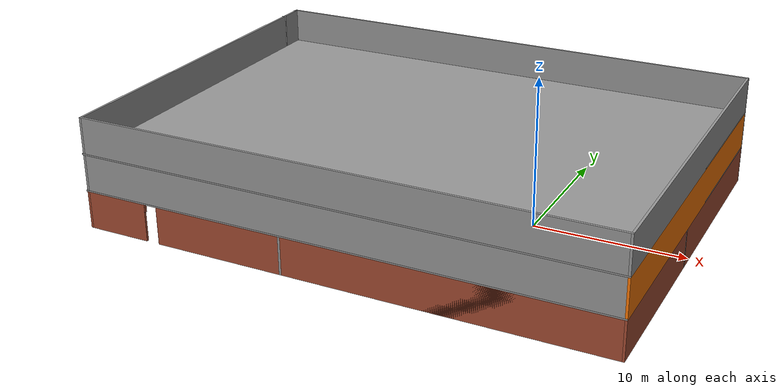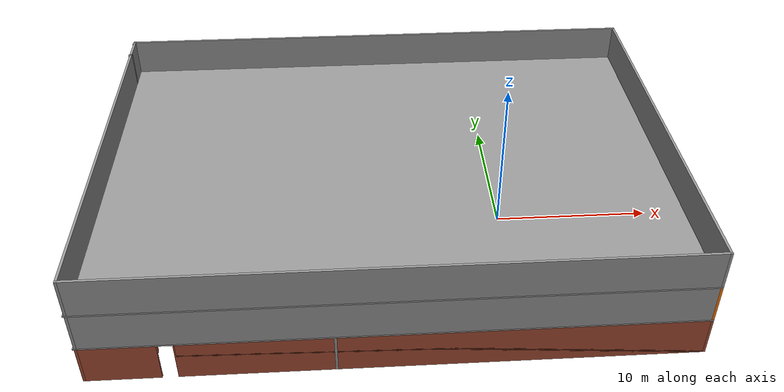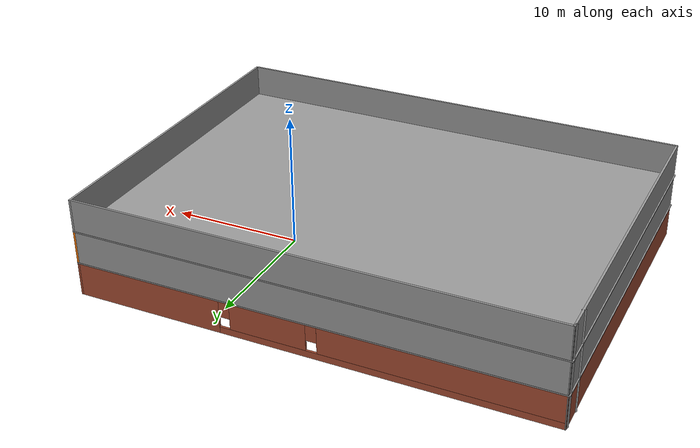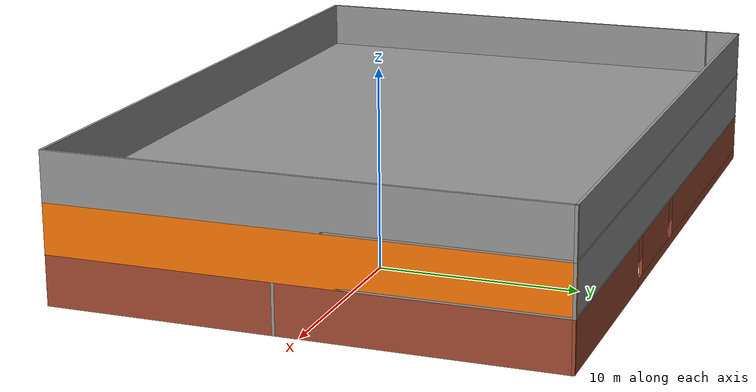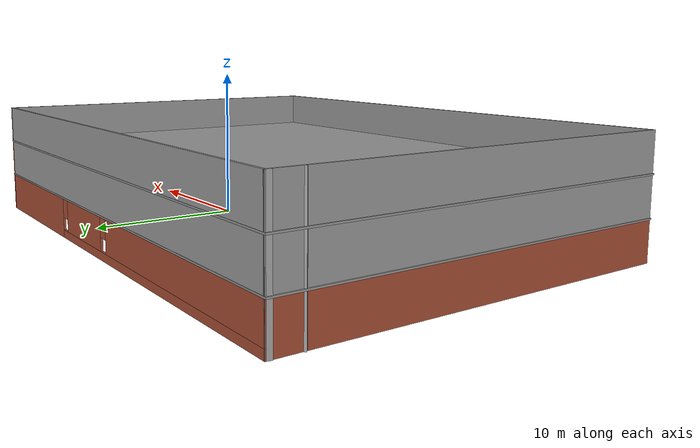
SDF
<?xml version='1.0'?>
<sdf version='1.6'>
  <model name='Building'>
    <pose frame=''>-7.54521 0.007829 0 0 -0 0</pose>
    <link name='Door_0'>
      <collision name='Door_0_Collision'>
        <geometry>
          <box>
            <size>0 0.17 0</size>
          </box>
        </geometry>
        <pose frame=''>0 0 0 0 -0 0</pose>
      </collision>
      <visual name='Door_0_Visual'>
        <pose frame=''>0 0 0 0 -0 0</pose>
        <geometry>
          <box>
            <size>0 0.17 0</size>
          </box>
        </geometry>
        <material>
          <script>
            <uri>file://media/materials/scripts/gazebo.material</uri>
            <name>Gazebo/Grey</name>
          </script>
        </material>
      </visual>
      <pose frame=''>-15.6038 -12.844 0 0 -0 0</pose>
    </link>
    <link name='Floor_0'>
      <collision name='Floor_0_Collision'>
        <geometry>
          <box>
            <size>35.2404 25.1657 0.1</size>
          </box>
        </geometry>
        <pose frame=''>0 0 0.05 0 -0 0</pose>
      </collision>
      <visual name='Floor_0_Visual'>
        <pose frame=''>0 0 0.05 0 -0 0</pose>
        <geometry>
          <box>
            <size>35.2404 25.1657 0.1</size>
          </box>
        </geometry>
        <material>
          <script>
            <uri>file://media/materials/scripts/gazebo.material</uri>
            <name>Gazebo/Grey</name>
          </script>
          <ambient>1 1 1 1</ambient>
        </material>
        <meta>
          <layer>1</layer>
        </meta>
      </visual>
      <pose frame=''>-8e-06 1e-06 2.5 0 -0 0</pose>
    </link>
    <link name='Floor_1'>
      <collision name='Floor_1_Collision'>
        <geometry>
          <box>
            <size>35.2404 25.1657 0.1</size>
          </box>
        </geometry>
        <pose frame=''>0 0 0.05 0 -0 0</pose>
      </collision>
      <visual name='Floor_1_Visual'>
        <pose frame=''>0 0 0.05 0 -0 0</pose>
        <geometry>
          <box>
            <size>35.2404 25.1657 0.1</size>
          </box>
        </geometry>
        <material>
          <script>
            <uri>file://media/materials/scripts/gazebo.material</uri>
            <name>Gazebo/Grey</name>
          </script>
          <ambient>1 1 1 1</ambient>
        </material>
        <meta>
          <layer>2</layer>
        </meta>
      </visual>
      <pose frame=''>-8e-06 1e-06 5 0 -0 0</pose>
    </link>
    <link name='Wall_0'>
      <collision name='Wall_0_Collision'>
        <geometry>
          <box>
            <size>25.15 0.15 2.5</size>
          </box>
        </geometry>
        <pose frame=''>0 0 1.25 0 -0 0</pose>
      </collision>
      <visual name='Wall_0_Visual'>
        <pose frame=''>0 0 1.25 0 -0 0</pose>
        <geometry>
          <box>
            <size>25.15 0.15 2.5</size>
          </box>
        </geometry>
        <material>
          <script>
            <uri>file://media/materials/scripts/gazebo.material</uri>
            <name>Gazebo/Bricks</name>
          </script>
          <ambient>0.996078 0.47451 0.0196078 1</ambient>
        </material>
        <meta>
          <layer>0</layer>
        </meta>
      </visual>
      <pose frame=''>-17.4548 -0.007829 0 0 0 -1.5708</pose>
    </link>
    <link name='Wall_1'>
      <pose frame=''>0.045213 -12.5078 0 0 -0 0</pose>
      <visual name='Wall_1_Visual_0'>
        <pose frame=''>-15.3964 0 1.25 0 -0 0</pose>
        <geometry>
          <box>
            <size>4.35711 0.15 2.5</size>
          </box>
        </geometry>
        <material>
          <script>
            <uri>file://media/materials/scripts/gazebo.material</uri>
            <name>Gazebo/Bricks</name>
          </script>
          <ambient>0.996078 0.47451 0.0196078 1</ambient>
        </material>
        <meta>
          <layer>0</layer>
        </meta>
      </visual>
      <collision name='Wall_1_Collision_0'>
        <geometry>
          <box>
            <size>4.35711 0.15 2.5</size>
          </box>
        </geometry>
        <pose frame=''>-15.3964 0 1.25 0 -0 0</pose>
      </collision>
      <visual name='Wall_1_Visual_1'>
        <pose frame=''>2.62855 0 1.25 0 -0 0</pose>
        <geometry>
          <box>
            <size>29.8929 0.15 2.5</size>
          </box>
        </geometry>
        <material>
          <script>
            <uri>file://media/materials/scripts/gazebo.material</uri>
            <name>Gazebo/Bricks</name>
          </script>
          <ambient>0.996078 0.47451 0.0196078 1</ambient>
        </material>
        <meta>
          <layer>0</layer>
        </meta>
      </visual>
      <collision name='Wall_1_Collision_1'>
        <geometry>
          <box>
            <size>29.8929 0.15 2.5</size>
          </box>
        </geometry>
        <pose frame=''>2.62855 0 1.25 0 -0 0</pose>
      </collision>
      <visual name='Wall_1_Visual_2'>
        <pose frame=''>2.66784 0 1.25 0 -0 0</pose>
        <geometry>
          <box>
            <size>29.8143 0.15 2.5</size>
          </box>
        </geometry>
        <material>
          <script>
            <uri>file://media/materials/scripts/gazebo.material</uri>
            <name>Gazebo/Bricks</name>
          </script>
          <ambient>0.996078 0.47451 0.0196078 1</ambient>
        </material>
        <meta>
          <layer>0</layer>
        </meta>
      </visual>
      <collision name='Wall_1_Collision_2'>
        <geometry>
          <box>
            <size>29.8143 0.15 2.5</size>
          </box>
        </geometry>
        <pose frame=''>2.66784 0 1.25 0 -0 0</pose>
      </collision>
      <visual name='Wall_1_Visual_3'>
        <pose frame=''>-13.1786 0 2.25 0 -0 0</pose>
        <geometry>
          <box>
            <size>0.078566 0.15 0.5</size>
          </box>
        </geometry>
        <material>
          <script>
            <uri>file://media/materials/scripts/gazebo.material</uri>
            <name>Gazebo/Bricks</name>
          </script>
          <ambient>0.996078 0.47451 0.0196078 1</ambient>
        </material>
        <meta>
          <layer>0</layer>
        </meta>
      </visual>
      <collision name='Wall_1_Collision_3'>
        <geometry>
          <box>
            <size>0.078566 0.15 0.5</size>
          </box>
        </geometry>
        <pose frame=''>-13.1786 0 2.25 0 -0 0</pose>
      </collision>
    </link>
    <link name='Wall_10'>
      <collision name='Wall_10_Collision'>
        <geometry>
          <box>
            <size>35.15 0.15 2.5</size>
          </box>
        </geometry>
        <pose frame=''>0 0 1.25 0 -0 0</pose>
      </collision>
      <visual name='Wall_10_Visual'>
        <pose frame=''>0 0 1.25 0 -0 0</pose>
        <geometry>
          <box>
            <size>35.15 0.15 2.5</size>
          </box>
        </geometry>
        <material>
          <script>
            <uri>file://media/materials/scripts/gazebo.material</uri>
            <name>Gazebo/Grey</name>
          </script>
          <ambient>1 1 1 1</ambient>
        </material>
        <meta>
          <layer>1</layer>
        </meta>
      </visual>
      <pose frame=''>0.045213 -12.5078 2.5 0 -0 0</pose>
    </link>
    <link name='Wall_11'>
      <collision name='Wall_11_Collision'>
        <geometry>
          <box>
            <size>25.15 0.15 2.5</size>
          </box>
        </geometry>
        <pose frame=''>0 0 1.25 0 -0 0</pose>
      </collision>
      <visual name='Wall_11_Visual'>
        <pose frame=''>0 0 1.25 0 -0 0</pose>
        <geometry>
          <box>
            <size>25.15 0.15 2.5</size>
          </box>
        </geometry>
        <material>
          <script>
            <uri>file://media/materials/scripts/gazebo.material</uri>
            <name>Gazebo/Grey</name>
          </script>
          <ambient>0.996078 0.47451 0.0196078 1</ambient>
        </material>
        <meta>
          <layer>1</layer>
        </meta>
      </visual>
      <pose frame=''>17.5452 -0.007829 2.5 0 -0 1.5708</pose>
    </link>
    <link name='Wall_12'>
      <collision name='Wall_12_Collision'>
        <geometry>
          <box>
            <size>35.15 0.15 2.5</size>
          </box>
        </geometry>
        <pose frame=''>0 0 1.25 0 -0 0</pose>
      </collision>
      <visual name='Wall_12_Visual'>
        <pose frame=''>0 0 1.25 0 -0 0</pose>
        <geometry>
          <box>
            <size>35.15 0.15 2.5</size>
          </box>
        </geometry>
        <material>
          <script>
            <uri>file://media/materials/scripts/gazebo.material</uri>
            <name>Gazebo/Grey</name>
          </script>
          <ambient>1 1 1 1</ambient>
        </material>
        <meta>
          <layer>1</layer>
        </meta>
      </visual>
      <pose frame=''>0.045213 12.4922 2.5 0 -0 3.14159</pose>
    </link>
    <link name='Wall_13'>
      <collision name='Wall_13_Collision'>
        <geometry>
          <box>
            <size>0.362096 0.15 2.5</size>
          </box>
        </geometry>
        <pose frame=''>0 0 1.25 0 -0 0</pose>
      </collision>
      <visual name='Wall_13_Visual'>
        <pose frame=''>0 0 1.25 0 -0 0</pose>
        <geometry>
          <box>
            <size>0.362096 0.15 2.5</size>
          </box>
        </geometry>
        <material>
          <script>
            <uri>file://media/materials/scripts/gazebo.material</uri>
            <name>Gazebo/Grey</name>
          </script>
          <ambient>1 1 1 1</ambient>
        </material>
        <meta>
          <layer>1</layer>
        </meta>
      </visual>
      <pose frame=''>-17.48 12.3892 2.5 0 0 -1.81046</pose>
    </link>
    <link name='Wall_14'>
      <collision name='Wall_14_Collision'>
        <geometry>
          <box>
            <size>0.25 0.15 2.5</size>
          </box>
        </geometry>
        <pose frame=''>0 0 1.25 0 -0 0</pose>
      </collision>
      <visual name='Wall_14_Visual'>
        <pose frame=''>0 0 1.25 0 -0 0</pose>
        <geometry>
          <box>
            <size>0.25 0.15 2.5</size>
          </box>
        </geometry>
        <material>
          <script>
            <uri>file://media/materials/scripts/gazebo.material</uri>
            <name>Gazebo/Grey</name>
          </script>
          <ambient>1 1 1 1</ambient>
        </material>
        <meta>
          <layer>1</layer>
        </meta>
      </visual>
      <pose frame=''>-17.4788 10.6828 2.5 0 0 -2.35619</pose>
    </link>
    <link name='Wall_15'>
      <collision name='Wall_15_Collision'>
        <geometry>
          <box>
            <size>25.15 0.15 2.5</size>
          </box>
        </geometry>
        <pose frame=''>0 0 1.25 0 -0 0</pose>
      </collision>
      <visual name='Wall_15_Visual'>
        <pose frame=''>0 0 1.25 0 -0 0</pose>
        <geometry>
          <box>
            <size>25.15 0.15 2.5</size>
          </box>
        </geometry>
        <material>
          <script>
            <uri>file://media/materials/scripts/gazebo.material</uri>
            <name>Gazebo/Grey</name>
          </script>
          <ambient>1 1 1 1</ambient>
        </material>
        <meta>
          <layer>2</layer>
        </meta>
      </visual>
      <pose frame=''>-17.4548 -0.007829 5 0 0 -1.5708</pose>
    </link>
    <link name='Wall_16'>
      <collision name='Wall_16_Collision'>
        <geometry>
          <box>
            <size>35.15 0.15 2.5</size>
          </box>
        </geometry>
        <pose frame=''>0 0 1.25 0 -0 0</pose>
      </collision>
      <visual name='Wall_16_Visual'>
        <pose frame=''>0 0 1.25 0 -0 0</pose>
        <geometry>
          <box>
            <size>35.15 0.15 2.5</size>
          </box>
        </geometry>
        <material>
          <script>
            <uri>file://media/materials/scripts/gazebo.material</uri>
            <name>Gazebo/Grey</name>
          </script>
          <ambient>1 1 1 1</ambient>
        </material>
        <meta>
          <layer>2</layer>
        </meta>
      </visual>
      <pose frame=''>0.045213 -12.5078 5 0 -0 0</pose>
    </link>
    <link name='Wall_17'>
      <collision name='Wall_17_Collision'>
        <geometry>
          <box>
            <size>25.15 0.15 2.5</size>
          </box>
        </geometry>
        <pose frame=''>0 0 1.25 0 -0 0</pose>
      </collision>
      <visual name='Wall_17_Visual'>
        <pose frame=''>0 0 1.25 0 -0 0</pose>
        <geometry>
          <box>
            <size>25.15 0.15 2.5</size>
          </box>
        </geometry>
        <material>
          <script>
            <uri>file://media/materials/scripts/gazebo.material</uri>
            <name>Gazebo/Grey</name>
          </script>
          <ambient>1 1 1 1</ambient>
        </material>
        <meta>
          <layer>2</layer>
        </meta>
      </visual>
      <pose frame=''>17.5452 -0.007829 5 0 -0 1.5708</pose>
    </link>
    <link name='Wall_18'>
      <collision name='Wall_18_Collision'>
        <geometry>
          <box>
            <size>35.15 0.15 2.5</size>
          </box>
        </geometry>
        <pose frame=''>0 0 1.25 0 -0 0</pose>
      </collision>
      <visual name='Wall_18_Visual'>
        <pose frame=''>0 0 1.25 0 -0 0</pose>
        <geometry>
          <box>
            <size>35.15 0.15 2.5</size>
          </box>
        </geometry>
        <material>
          <script>
            <uri>file://media/materials/scripts/gazebo.material</uri>
            <name>Gazebo/Grey</name>
          </script>
          <ambient>1 1 1 1</ambient>
        </material>
        <meta>
          <layer>2</layer>
        </meta>
      </visual>
      <pose frame=''>0.045213 12.4922 5 0 -0 3.14159</pose>
    </link>
    <link name='Wall_19'>
      <collision name='Wall_19_Collision'>
        <geometry>
          <box>
            <size>0.362096 0.15 2.5</size>
          </box>
        </geometry>
        <pose frame=''>0 0 1.25 0 -0 0</pose>
      </collision>
      <visual name='Wall_19_Visual'>
        <pose frame=''>0 0 1.25 0 -0 0</pose>
        <geometry>
          <box>
            <size>0.362096 0.15 2.5</size>
          </box>
        </geometry>
        <material>
          <script>
            <uri>file://media/materials/scripts/gazebo.material</uri>
            <name>Gazebo/Grey</name>
          </script>
          <ambient>1 1 1 1</ambient>
        </material>
        <meta>
          <layer>2</layer>
        </meta>
      </visual>
      <pose frame=''>-17.48 12.3892 5 0 0 -1.81046</pose>
    </link>
    <link name='Wall_2'>
      <collision name='Wall_2_Collision'>
        <geometry>
          <box>
            <size>25.15 0.15 2.5</size>
          </box>
        </geometry>
        <pose frame=''>0 0 1.25 0 -0 0</pose>
      </collision>
      <visual name='Wall_2_Visual'>
        <pose frame=''>0 0 1.25 0 -0 0</pose>
        <geometry>
          <box>
            <size>25.15 0.15 2.5</size>
          </box>
        </geometry>
        <material>
          <script>
            <uri>file://media/materials/scripts/gazebo.material</uri>
            <name>Gazebo/Bricks</name>
          </script>
          <ambient>0.996078 0.47451 0.0196078 1</ambient>
        </material>
        <meta>
          <layer>0</layer>
        </meta>
      </visual>
      <pose frame=''>17.5452 -0.007829 0 0 -0 1.5708</pose>
    </link>
    <link name='Wall_20'>
      <collision name='Wall_20_Collision'>
        <geometry>
          <box>
            <size>0.25 0.15 2.5</size>
          </box>
        </geometry>
        <pose frame=''>0 0 1.25 0 -0 0</pose>
      </collision>
      <visual name='Wall_20_Visual'>
        <pose frame=''>0 0 1.25 0 -0 0</pose>
        <geometry>
          <box>
            <size>0.25 0.15 2.5</size>
          </box>
        </geometry>
        <material>
          <script>
            <uri>file://media/materials/scripts/gazebo.material</uri>
            <name>Gazebo/Grey</name>
          </script>
          <ambient>1 1 1 1</ambient>
        </material>
        <meta>
          <layer>2</layer>
        </meta>
      </visual>
      <pose frame=''>-17.4788 10.6828 5 0 0 -2.35619</pose>
    </link>
    <link name='Wall_21'>
      <collision name='Wall_21_Collision'>
        <geometry>
          <box>
            <size>5.65 0.15 2.5</size>
          </box>
        </geometry>
        <pose frame=''>0 0 1.25 0 -0 0</pose>
      </collision>
      <visual name='Wall_21_Visual'>
        <pose frame=''>0 0 1.25 0 -0 0</pose>
        <geometry>
          <box>
            <size>5.65 0.15 2.5</size>
          </box>
        </geometry>
        <material>
          <script>
            <uri>file://media/materials/scripts/gazebo.material</uri>
            <name>Gazebo/Grey</name>
          </script>
          <ambient>1 1 1 1</ambient>
        </material>
        <meta>
          <layer>0</layer>
        </meta>
      </visual>
      <pose frame=''>-3.45479 9.74217 0 0 -0 1.5708</pose>
    </link>
    <link name='Wall_24'>
      <collision name='Wall_24_Collision'>
        <geometry>
          <box>
            <size>16.15 0.15 2.5</size>
          </box>
        </geometry>
        <pose frame=''>0 0 1.25 0 -0 0</pose>
      </collision>
      <visual name='Wall_24_Visual'>
        <pose frame=''>0 0 1.25 0 -0 0</pose>
        <geometry>
          <box>
            <size>16.15 0.15 2.5</size>
          </box>
        </geometry>
        <material>
          <script>
            <uri>file://media/materials/scripts/gazebo.material</uri>
            <name>Gazebo/Grey</name>
          </script>
          <ambient>1 1 1 1</ambient>
        </material>
        <meta>
          <layer>0</layer>
        </meta>
      </visual>
      <pose frame=''>-3.45479 -4.50783 0 0 -0 1.5708</pose>
    </link>
    <link name='Wall_25'>
      <collision name='Wall_25_Collision'>
        <geometry>
          <box>
            <size>0.15 0.15 2.5</size>
          </box>
        </geometry>
        <pose frame=''>0 0 1.25 0 -0 0</pose>
      </collision>
      <visual name='Wall_25_Visual'>
        <pose frame=''>0 0 1.25 0 -0 0</pose>
        <geometry>
          <box>
            <size>0.15 0.15 2.5</size>
          </box>
        </geometry>
        <material>
          <script>
            <uri>file://media/materials/scripts/gazebo.material</uri>
            <name>Gazebo/Grey</name>
          </script>
          <ambient>1 1 1 1</ambient>
        </material>
        <meta>
          <layer>0</layer>
        </meta>
      </visual>
      <pose frame=''>-3.45479 3.49217 0 0 -0 0</pose>
    </link>
    <link name='Wall_27'>
      <pose frame=''>7.04521 -1.22083 0 0 -0 0</pose>
      <visual name='Wall_27_Visual_0'>
        <pose frame=''>-8.12084 0 1.25 0 -0 0</pose>
        <geometry>
          <box>
            <size>4.90832 0.15 2.5</size>
          </box>
        </geometry>
        <material>
          <script>
            <uri>file://media/materials/scripts/gazebo.material</uri>
            <name>Gazebo/Grey</name>
          </script>
          <ambient>1 1 1 1</ambient>
        </material>
        <meta>
          <layer>0</layer>
        </meta>
      </visual>
      <collision name='Wall_27_Collision_0'>
        <geometry>
          <box>
            <size>4.90832 0.15 2.5</size>
          </box>
        </geometry>
        <pose frame=''>-8.12084 0 1.25 0 -0 0</pose>
      </collision>
      <visual name='Wall_27_Visual_1'>
        <pose frame=''>3.40416 0 1.25 0 -0 0</pose>
        <geometry>
          <box>
            <size>14.3417 0.15 2.5</size>
          </box>
        </geometry>
        <material>
          <script>
            <uri>file://media/materials/scripts/gazebo.material</uri>
            <name>Gazebo/Grey</name>
          </script>
          <ambient>1 1 1 1</ambient>
        </material>
        <meta>
          <layer>0</layer>
        </meta>
      </visual>
      <collision name='Wall_27_Collision_1'>
        <geometry>
          <box>
            <size>14.3417 0.15 2.5</size>
          </box>
        </geometry>
        <pose frame=''>3.40416 0 1.25 0 -0 0</pose>
      </collision>
      <visual name='Wall_27_Visual_2'>
        <pose frame=''>-4.71668 0 2.25 0 -0 0</pose>
        <geometry>
          <box>
            <size>1.9 0.15 0.5</size>
          </box>
        </geometry>
        <material>
          <script>
            <uri>file://media/materials/scripts/gazebo.material</uri>
            <name>Gazebo/Grey</name>
          </script>
          <ambient>1 1 1 1</ambient>
        </material>
        <meta>
          <layer>0</layer>
        </meta>
      </visual>
      <collision name='Wall_27_Collision_2'>
        <geometry>
          <box>
            <size>1.9 0.15 0.5</size>
          </box>
        </geometry>
        <pose frame=''>-4.71668 0 2.25 0 -0 0</pose>
      </collision>
    </link>
    <link name='Wall_28'>
      <collision name='Wall_28_Collision'>
        <geometry>
          <box>
            <size>1.48854 0.15 2.5</size>
          </box>
        </geometry>
        <pose frame=''>0 0 1.25 0 -0 0</pose>
      </collision>
      <visual name='Wall_28_Visual'>
        <pose frame=''>0 0 1.25 0 -0 0</pose>
        <geometry>
          <box>
            <size>1.48854 0.15 2.5</size>
          </box>
        </geometry>
        <material>
          <script>
            <uri>file://media/materials/scripts/gazebo.material</uri>
            <name>Gazebo/Grey</name>
          </script>
          <ambient>1 1 1 1</ambient>
        </material>
        <meta>
          <layer>0</layer>
        </meta>
      </visual>
      <pose frame=''>16.8759 -1.22066 0 0 -0 3.14135</pose>
    </link>
    <link name='Wall_3'>
      <pose frame=''>0.045213 12.4922 0 0 -0 3.14159</pose>
      <visual name='Wall_3_Visual_0'>
        <pose frame=''>-11.9551 0 1.25 0 -0 0</pose>
        <geometry>
          <box>
            <size>11.2398 0.15 2.5</size>
          </box>
        </geometry>
        <material>
          <script>
            <uri>file://media/materials/scripts/gazebo.material</uri>
            <name>Gazebo/Bricks</name>
          </script>
          <ambient>0.996078 0.47451 0.0196078 1</ambient>
        </material>
        <meta>
          <layer>0</layer>
        </meta>
      </visual>
      <collision name='Wall_3_Collision_0'>
        <geometry>
          <box>
            <size>11.2398 0.15 2.5</size>
          </box>
        </geometry>
        <pose frame=''>-11.9551 0 1.25 0 -0 0</pose>
      </collision>
      <visual name='Wall_3_Visual_1'>
        <pose frame=''>5.6199 0 0.25 0 -0 0</pose>
        <geometry>
          <box>
            <size>23.9102 0.15 0.5</size>
          </box>
        </geometry>
        <material>
          <script>
            <uri>file://media/materials/scripts/gazebo.material</uri>
            <name>Gazebo/Bricks</name>
          </script>
          <ambient>0.996078 0.47451 0.0196078 1</ambient>
        </material>
        <meta>
          <layer>0</layer>
        </meta>
      </visual>
      <collision name='Wall_3_Collision_1'>
        <geometry>
          <box>
            <size>23.9102 0.15 0.5</size>
          </box>
        </geometry>
        <pose frame=''>5.6199 0 0.25 0 -0 0</pose>
      </collision>
      <visual name='Wall_3_Visual_2'>
        <pose frame=''>-2.71782 0 1.5 0 -0 0</pose>
        <geometry>
          <box>
            <size>5.63475 0.15 2</size>
          </box>
        </geometry>
        <material>
          <script>
            <uri>file://media/materials/scripts/gazebo.material</uri>
            <name>Gazebo/Bricks</name>
          </script>
          <ambient>0.996078 0.47451 0.0196078 1</ambient>
        </material>
        <meta>
          <layer>0</layer>
        </meta>
      </visual>
      <collision name='Wall_3_Collision_2'>
        <geometry>
          <box>
            <size>5.63475 0.15 2</size>
          </box>
        </geometry>
        <pose frame=''>-2.71782 0 1.5 0 -0 0</pose>
      </collision>
      <visual name='Wall_3_Visual_3'>
        <pose frame=''>9.23728 0 1.5 0 -0 0</pose>
        <geometry>
          <box>
            <size>16.6754 0.15 2</size>
          </box>
        </geometry>
        <material>
          <script>
            <uri>file://media/materials/scripts/gazebo.material</uri>
            <name>Gazebo/Bricks</name>
          </script>
          <ambient>0.996078 0.47451 0.0196078 1</ambient>
        </material>
        <meta>
          <layer>0</layer>
        </meta>
      </visual>
      <collision name='Wall_3_Collision_3'>
        <geometry>
          <box>
            <size>16.6754 0.15 2</size>
          </box>
        </geometry>
        <pose frame=''>9.23728 0 1.5 0 -0 0</pose>
      </collision>
      <visual name='Wall_3_Visual_4'>
        <pose frame=''>-5.93519 0 1.9 0 -0 0</pose>
        <geometry>
          <box>
            <size>0.8 0.15 1.2</size>
          </box>
        </geometry>
        <material>
          <script>
            <uri>file://media/materials/scripts/gazebo.material</uri>
            <name>Gazebo/Bricks</name>
          </script>
          <ambient>0.996078 0.47451 0.0196078 1</ambient>
        </material>
        <meta>
          <layer>0</layer>
        </meta>
      </visual>
      <collision name='Wall_3_Collision_4'>
        <geometry>
          <box>
            <size>0.8 0.15 1.2</size>
          </box>
        </geometry>
        <pose frame=''>-5.93519 0 1.9 0 -0 0</pose>
      </collision>
      <visual name='Wall_3_Visual_5'>
        <pose frame=''>0.499556 0 1.9 0 -0 0</pose>
        <geometry>
          <box>
            <size>0.8 0.15 1.2</size>
          </box>
        </geometry>
        <material>
          <script>
            <uri>file://media/materials/scripts/gazebo.material</uri>
            <name>Gazebo/Bricks</name>
          </script>
          <ambient>0.996078 0.47451 0.0196078 1</ambient>
        </material>
        <meta>
          <layer>0</layer>
        </meta>
      </visual>
      <collision name='Wall_3_Collision_5'>
        <geometry>
          <box>
            <size>0.8 0.15 1.2</size>
          </box>
        </geometry>
        <pose frame=''>0.499556 0 1.9 0 -0 0</pose>
      </collision>
    </link>
    <link name='Wall_4'>
      <collision name='Wall_4_Collision'>
        <geometry>
          <box>
            <size>0.362096 0.15 2.5</size>
          </box>
        </geometry>
        <pose frame=''>0 0 1.25 0 -0 0</pose>
      </collision>
      <visual name='Wall_4_Visual'>
        <pose frame=''>0 0 1.25 0 -0 0</pose>
        <geometry>
          <box>
            <size>0.362096 0.15 2.5</size>
          </box>
        </geometry>
        <material>
          <script>
            <uri>file://media/materials/scripts/gazebo.material</uri>
            <name>Gazebo/Grey</name>
          </script>
          <ambient>1 1 1 1</ambient>
        </material>
        <meta>
          <layer>0</layer>
        </meta>
      </visual>
      <pose frame=''>-17.48 12.3892 0 0 0 -1.81046</pose>
    </link>
    <link name='Wall_6'>
      <collision name='Wall_6_Collision'>
        <geometry>
          <box>
            <size>0.25 0.15 2.5</size>
          </box>
        </geometry>
        <pose frame=''>0 0 1.25 0 -0 0</pose>
      </collision>
      <visual name='Wall_6_Visual'>
        <pose frame=''>0 0 1.25 0 -0 0</pose>
        <geometry>
          <box>
            <size>0.25 0.15 2.5</size>
          </box>
        </geometry>
        <material>
          <script>
            <uri>file://media/materials/scripts/gazebo.material</uri>
            <name>Gazebo/Grey</name>
          </script>
          <ambient>1 1 1 1</ambient>
        </material>
        <meta>
          <layer>0</layer>
        </meta>
      </visual>
      <pose frame=''>-17.4788 10.6828 0 0 0 -2.35619</pose>
    </link>
    <link name='Wall_9'>
      <collision name='Wall_9_Collision'>
        <geometry>
          <box>
            <size>25.15 0.15 2.5</size>
          </box>
        </geometry>
        <pose frame=''>0 0 1.25 0 -0 0</pose>
      </collision>
      <visual name='Wall_9_Visual'>
        <pose frame=''>0 0 1.25 0 -0 0</pose>
        <geometry>
          <box>
            <size>25.15 0.15 2.5</size>
          </box>
        </geometry>
        <material>
          <script>
            <uri>file://media/materials/scripts/gazebo.material</uri>
            <name>Gazebo/Grey</name>
          </script>
          <ambient>1 1 1 1</ambient>
        </material>
        <meta>
          <layer>1</layer>
        </meta>
      </visual>
      <pose frame=''>-17.4548 -0.007829 2.5 0 0 -1.5708</pose>
    </link>
    <static>1</static>
  </model>
</sdf>
